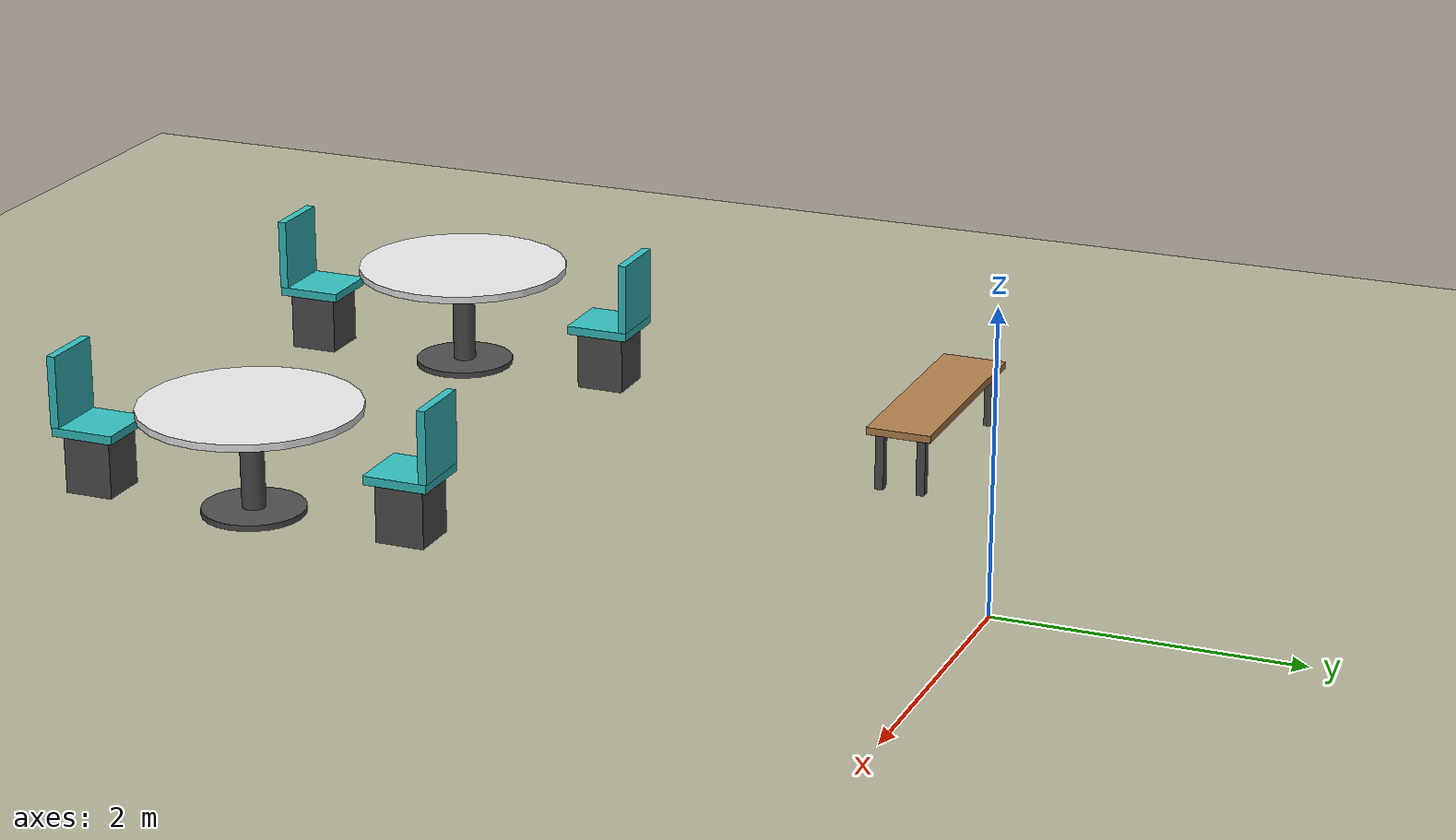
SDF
<sdf version="1.6">
 <world name="smart_building">
  <model name="ground_plane">
   <static>true</static>
   <link name="link">
    <collision name="collision">
     <geometry><plane><normal>0 0 1</normal><size>100 100</size></plane></geometry>
     <surface><friction><ode><mu>1.0</mu><mu2>1.0</mu2></ode></friction></surface>
    </collision>
    <visual name="visual">
     <geometry><plane><normal>0 0 1</normal><size>100 100</size></plane></geometry>
     <material>
      <script><uri>file://media/materials/scripts/gazebo.material</uri><name>Gazebo/Residential</name></script>
     </material>
    </visual>
   </link>
  </model>
  <model name="cafe_table_0">
   <static>true</static>
   <pose>-3.0000 -5.0000 0.0000 0.0000 0.0000 0.0000</pose>
   <link name="link_0">
    <pose>0.0000 0.0000 0.7250 0.0000 0.0000 0.0000</pose>
    <collision name="link_0_collision">
     <geometry><cylinder><radius>0.7500</radius><length>0.0500</length></cylinder></geometry>
    </collision>
    <visual name="link_0_visual">
     <geometry><cylinder><radius>0.7500</radius><length>0.0500</length></cylinder></geometry>
     <material>
      <script><uri>file://media/materials/scripts/gazebo.material</uri><name>Gazebo/White</name></script>
     </material>
    </visual>
   </link>
   <link name="link_1">
    <pose>0.0000 0.0000 0.3500 0.0000 0.0000 0.0000</pose>
    <collision name="link_1_collision">
     <geometry><cylinder><radius>0.0800</radius><length>0.7000</length></cylinder></geometry>
    </collision>
    <visual name="link_1_visual">
     <geometry><cylinder><radius>0.0800</radius><length>0.7000</length></cylinder></geometry>
     <material>
      <script><uri>file://media/materials/scripts/gazebo.material</uri><name>Gazebo/DarkGrey</name></script>
     </material>
    </visual>
   </link>
   <link name="link_2">
    <pose>0.0000 0.0000 0.0200 0.0000 0.0000 0.0000</pose>
    <collision name="link_2_collision">
     <geometry><cylinder><radius>0.3500</radius><length>0.0400</length></cylinder></geometry>
    </collision>
    <visual name="link_2_visual">
     <geometry><cylinder><radius>0.3500</radius><length>0.0400</length></cylinder></geometry>
     <material>
      <script><uri>file://media/materials/scripts/gazebo.material</uri><name>Gazebo/DarkGrey</name></script>
     </material>
    </visual>
   </link>
  </model>
  <model name="cafe_chair_0_0">
   <static>true</static>
   <pose>-3.0000 -3.8500 0.0000 0.0000 0.0000 3.1416</pose>
   <link name="link_0">
    <pose>0.0000 0.0000 0.4400 0.0000 0.0000 0.0000</pose>
    <collision name="link_0_collision">
     <geometry><box><size>0.4500 0.4500 0.0600</size></box></geometry>
    </collision>
    <visual name="link_0_visual">
     <geometry><box><size>0.4500 0.4500 0.0600</size></box></geometry>
     <material>
      <script><uri>file://media/materials/scripts/gazebo.material</uri><name>Gazebo/Turquoise</name></script>
     </material>
    </visual>
   </link>
   <link name="link_1">
    <pose>0.0000 -0.2000 0.7200 0.0000 0.0000 0.0000</pose>
    <collision name="link_1_collision">
     <geometry><box><size>0.4500 0.0600 0.5000</size></box></geometry>
    </collision>
    <visual name="link_1_visual">
     <geometry><box><size>0.4500 0.0600 0.5000</size></box></geometry>
     <material>
      <script><uri>file://media/materials/scripts/gazebo.material</uri><name>Gazebo/Turquoise</name></script>
     </material>
    </visual>
   </link>
   <link name="link_2">
    <pose>0.0000 0.0000 0.2100 0.0000 0.0000 0.0000</pose>
    <collision name="link_2_collision">
     <geometry><box><size>0.3400 0.3400 0.4200</size></box></geometry>
    </collision>
    <visual name="link_2_visual">
     <geometry><box><size>0.3400 0.3400 0.4200</size></box></geometry>
     <material>
      <script><uri>file://media/materials/scripts/gazebo.material</uri><name>Gazebo/DarkGrey</name></script>
     </material>
    </visual>
   </link>
  </model>
  <model name="cafe_chair_0_1">
   <static>true</static>
   <pose>-3.0000 -6.1500 0.0000 0.0000 0.0000 0.0000</pose>
   <link name="link_0">
    <pose>0.0000 0.0000 0.4400 0.0000 0.0000 0.0000</pose>
    <collision name="link_0_collision">
     <geometry><box><size>0.4500 0.4500 0.0600</size></box></geometry>
    </collision>
    <visual name="link_0_visual">
     <geometry><box><size>0.4500 0.4500 0.0600</size></box></geometry>
     <material>
      <script><uri>file://media/materials/scripts/gazebo.material</uri><name>Gazebo/Turquoise</name></script>
     </material>
    </visual>
   </link>
   <link name="link_1">
    <pose>0.0000 -0.2000 0.7200 0.0000 0.0000 0.0000</pose>
    <collision name="link_1_collision">
     <geometry><box><size>0.4500 0.0600 0.5000</size></box></geometry>
    </collision>
    <visual name="link_1_visual">
     <geometry><box><size>0.4500 0.0600 0.5000</size></box></geometry>
     <material>
      <script><uri>file://media/materials/scripts/gazebo.material</uri><name>Gazebo/Turquoise</name></script>
     </material>
    </visual>
   </link>
   <link name="link_2">
    <pose>0.0000 0.0000 0.2100 0.0000 0.0000 0.0000</pose>
    <collision name="link_2_collision">
     <geometry><box><size>0.3400 0.3400 0.4200</size></box></geometry>
    </collision>
    <visual name="link_2_visual">
     <geometry><box><size>0.3400 0.3400 0.4200</size></box></geometry>
     <material>
      <script><uri>file://media/materials/scripts/gazebo.material</uri><name>Gazebo/DarkGrey</name></script>
     </material>
    </visual>
   </link>
  </model>
  <model name="cafe_table_1">
   <static>true</static>
   <pose>0.2000 -5.0000 0.0000 0.0000 0.0000 0.0000</pose>
   <link name="link_0">
    <pose>0.0000 0.0000 0.7250 0.0000 0.0000 0.0000</pose>
    <collision name="link_0_collision">
     <geometry><cylinder><radius>0.7500</radius><length>0.0500</length></cylinder></geometry>
    </collision>
    <visual name="link_0_visual">
     <geometry><cylinder><radius>0.7500</radius><length>0.0500</length></cylinder></geometry>
     <material>
      <script><uri>file://media/materials/scripts/gazebo.material</uri><name>Gazebo/White</name></script>
     </material>
    </visual>
   </link>
   <link name="link_1">
    <pose>0.0000 0.0000 0.3500 0.0000 0.0000 0.0000</pose>
    <collision name="link_1_collision">
     <geometry><cylinder><radius>0.0800</radius><length>0.7000</length></cylinder></geometry>
    </collision>
    <visual name="link_1_visual">
     <geometry><cylinder><radius>0.0800</radius><length>0.7000</length></cylinder></geometry>
     <material>
      <script><uri>file://media/materials/scripts/gazebo.material</uri><name>Gazebo/DarkGrey</name></script>
     </material>
    </visual>
   </link>
   <link name="link_2">
    <pose>0.0000 0.0000 0.0200 0.0000 0.0000 0.0000</pose>
    <collision name="link_2_collision">
     <geometry><cylinder><radius>0.3500</radius><length>0.0400</length></cylinder></geometry>
    </collision>
    <visual name="link_2_visual">
     <geometry><cylinder><radius>0.3500</radius><length>0.0400</length></cylinder></geometry>
     <material>
      <script><uri>file://media/materials/scripts/gazebo.material</uri><name>Gazebo/DarkGrey</name></script>
     </material>
    </visual>
   </link>
  </model>
  <model name="cafe_chair_1_0">
   <static>true</static>
   <pose>0.2000 -3.8500 0.0000 0.0000 0.0000 3.1416</pose>
   <link name="link_0">
    <pose>0.0000 0.0000 0.4400 0.0000 0.0000 0.0000</pose>
    <collision name="link_0_collision">
     <geometry><box><size>0.4500 0.4500 0.0600</size></box></geometry>
    </collision>
    <visual name="link_0_visual">
     <geometry><box><size>0.4500 0.4500 0.0600</size></box></geometry>
     <material>
      <script><uri>file://media/materials/scripts/gazebo.material</uri><name>Gazebo/Turquoise</name></script>
     </material>
    </visual>
   </link>
   <link name="link_1">
    <pose>0.0000 -0.2000 0.7200 0.0000 0.0000 0.0000</pose>
    <collision name="link_1_collision">
     <geometry><box><size>0.4500 0.0600 0.5000</size></box></geometry>
    </collision>
    <visual name="link_1_visual">
     <geometry><box><size>0.4500 0.0600 0.5000</size></box></geometry>
     <material>
      <script><uri>file://media/materials/scripts/gazebo.material</uri><name>Gazebo/Turquoise</name></script>
     </material>
    </visual>
   </link>
   <link name="link_2">
    <pose>0.0000 0.0000 0.2100 0.0000 0.0000 0.0000</pose>
    <collision name="link_2_collision">
     <geometry><box><size>0.3400 0.3400 0.4200</size></box></geometry>
    </collision>
    <visual name="link_2_visual">
     <geometry><box><size>0.3400 0.3400 0.4200</size></box></geometry>
     <material>
      <script><uri>file://media/materials/scripts/gazebo.material</uri><name>Gazebo/DarkGrey</name></script>
     </material>
    </visual>
   </link>
  </model>
  <model name="cafe_chair_1_1">
   <static>true</static>
   <pose>0.2000 -6.1500 0.0000 0.0000 0.0000 0.0000</pose>
   <link name="link_0">
    <pose>0.0000 0.0000 0.4400 0.0000 0.0000 0.0000</pose>
    <collision name="link_0_collision">
     <geometry><box><size>0.4500 0.4500 0.0600</size></box></geometry>
    </collision>
    <visual name="link_0_visual">
     <geometry><box><size>0.4500 0.4500 0.0600</size></box></geometry>
     <material>
      <script><uri>file://media/materials/scripts/gazebo.material</uri><name>Gazebo/Turquoise</name></script>
     </material>
    </visual>
   </link>
   <link name="link_1">
    <pose>0.0000 -0.2000 0.7200 0.0000 0.0000 0.0000</pose>
    <collision name="link_1_collision">
     <geometry><box><size>0.4500 0.0600 0.5000</size></box></geometry>
    </collision>
    <visual name="link_1_visual">
     <geometry><box><size>0.4500 0.0600 0.5000</size></box></geometry>
     <material>
      <script><uri>file://media/materials/scripts/gazebo.material</uri><name>Gazebo/Turquoise</name></script>
     </material>
    </visual>
   </link>
   <link name="link_2">
    <pose>0.0000 0.0000 0.2100 0.0000 0.0000 0.0000</pose>
    <collision name="link_2_collision">
     <geometry><box><size>0.3400 0.3400 0.4200</size></box></geometry>
    </collision>
    <visual name="link_2_visual">
     <geometry><box><size>0.3400 0.3400 0.4200</size></box></geometry>
     <material>
      <script><uri>file://media/materials/scripts/gazebo.material</uri><name>Gazebo/DarkGrey</name></script>
     </material>
    </visual>
   </link>
  </model>
  <model name="corridor_bench">
   <static>true</static>
   <pose>-2.5000 -1.2000 0.0000 0.0000 0.0000 0.0000</pose>
   <link name="link_0">
    <pose>0.0000 0.0000 0.4250 0.0000 0.0000 0.0000</pose>
    <collision name="link_0_collision">
     <geometry><box><size>1.6000 0.4500 0.0500</size></box></geometry>
    </collision>
    <visual name="link_0_visual">
     <geometry><box><size>1.6000 0.4500 0.0500</size></box></geometry>
     <material>
      <script><uri>file://media/materials/scripts/gazebo.material</uri><name>Gazebo/Wood</name></script>
     </material>
    </visual>
   </link>
   <link name="link_1">
    <pose>-0.7200 -0.1450 0.2000 0.0000 0.0000 0.0000</pose>
    <collision name="link_1_collision">
     <geometry><box><size>0.0600 0.0600 0.4000</size></box></geometry>
    </collision>
    <visual name="link_1_visual">
     <geometry><box><size>0.0600 0.0600 0.4000</size></box></geometry>
     <material>
      <script><uri>file://media/materials/scripts/gazebo.material</uri><name>Gazebo/DarkGrey</name></script>
     </material>
    </visual>
   </link>
   <link name="link_2">
    <pose>-0.7200 0.1450 0.2000 0.0000 0.0000 0.0000</pose>
    <collision name="link_2_collision">
     <geometry><box><size>0.0600 0.0600 0.4000</size></box></geometry>
    </collision>
    <visual name="link_2_visual">
     <geometry><box><size>0.0600 0.0600 0.4000</size></box></geometry>
     <material>
      <script><uri>file://media/materials/scripts/gazebo.material</uri><name>Gazebo/DarkGrey</name></script>
     </material>
    </visual>
   </link>
   <link name="link_3">
    <pose>0.7200 -0.1450 0.2000 0.0000 0.0000 0.0000</pose>
    <collision name="link_3_collision">
     <geometry><box><size>0.0600 0.0600 0.4000</size></box></geometry>
    </collision>
    <visual name="link_3_visual">
     <geometry><box><size>0.0600 0.0600 0.4000</size></box></geometry>
     <material>
      <script><uri>file://media/materials/scripts/gazebo.material</uri><name>Gazebo/DarkGrey</name></script>
     </material>
    </visual>
   </link>
   <link name="link_4">
    <pose>0.7200 0.1450 0.2000 0.0000 0.0000 0.0000</pose>
    <collision name="link_4_collision">
     <geometry><box><size>0.0600 0.0600 0.4000</size></box></geometry>
    </collision>
    <visual name="link_4_visual">
     <geometry><box><size>0.0600 0.0600 0.4000</size></box></geometry>
     <material>
      <script><uri>file://media/materials/scripts/gazebo.material</uri><name>Gazebo/DarkGrey</name></script>
     </material>
    </visual>
   </link>
  </model>
 </world>
</sdf>
